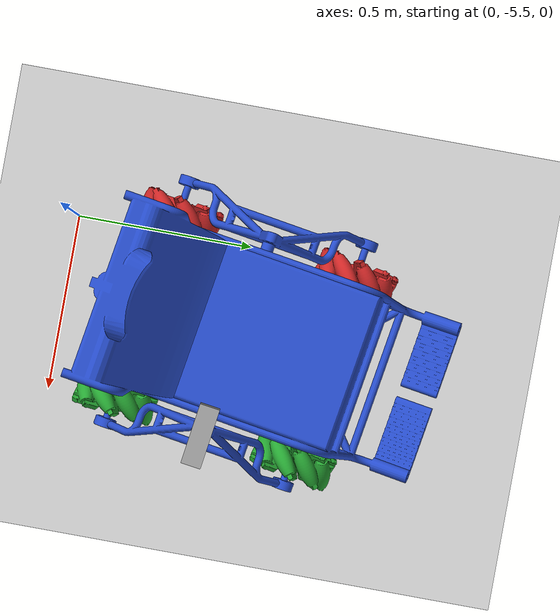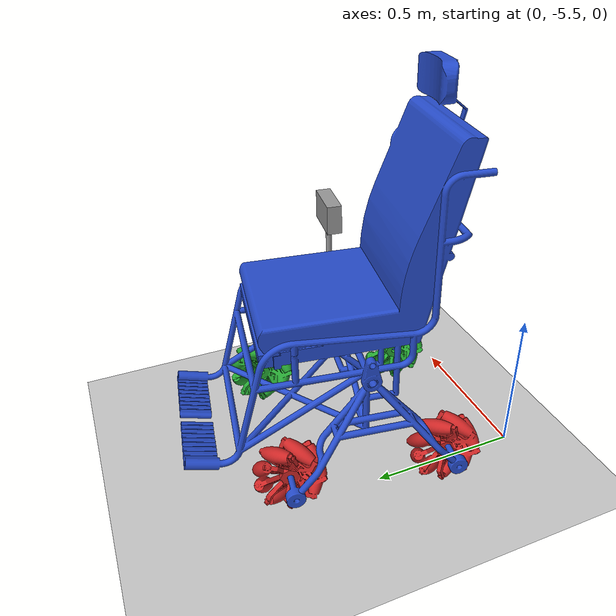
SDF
<sdf version="1.7">
 <world name="default">
  <light name="sun" type="directional">
   <pose>0 0 10 0 -0 0</pose>
   <diffuse>0.8 0.8 0.8 1</diffuse>
   <specular>0.2 0.2 0.2 1</specular>
   <attenuation>
    <range>1000</range>
    <constant>0.9</constant>
    <linear>0.01</linear>
    <quadratic>0.001</quadratic>
   </attenuation>
   <direction>-0.5 0.1 -0.9</direction>
   <spot><inner_angle>0</inner_angle><outer_angle>0</outer_angle><falloff>0</falloff></spot>
  </light>
  <model name="ground_plane">
   <static>1</static>
   <link name="link">
    <collision name="collision">
     <geometry><plane><normal>0 0 1</normal><size>100 100</size></plane></geometry>
     <surface><friction><ode><mu>100</mu><mu2>50</mu2></ode></friction></surface>
    </collision>
    <visual name="visual">
     <cast_shadows>0</cast_shadows>
     <geometry><plane><normal>0 0 1</normal><size>100 100</size></plane></geometry>
     <material>
      <script><uri>file://media/materials/scripts/gazebo.material</uri><name>Gazebo/Grey</name></script>
     </material>
    </visual>
   </link>
  </model>
  <gravity>0 0 -9.8</gravity>
  <magnetic_field>6e-06 2.3e-05 -4.2e-05</magnetic_field>
  <atmosphere type="adiabatic"/>
  <physics type="ode">
   <max_step_size>0.001</max_step_size>
   <real_time_factor>1</real_time_factor>
   <real_time_update_rate>1000</real_time_update_rate>
  </physics>
  <scene><ambient>0.4 0.4 0.4 1</ambient><background>0.7 0.7 0.7 1</background><shadows>1</shadows></scene>
  <audio><device>default</device></audio>
  <spherical_coordinates>
   <surface_model>EARTH_WGS84</surface_model>
   <latitude_deg>0</latitude_deg>
   <longitude_deg>0</longitude_deg>
   <elevation>0</elevation>
   <heading_deg>0</heading_deg>
  </spherical_coordinates>
  <model name="Wheelchair_camera">
   <link name="chassis">
    <inertial>
     <mass>7</mass>
     <inertia>
      <ixx>0.166667</ixx>
      <ixy>0</ixy>
      <ixz>0</ixz>
      <iyy>0.166667</iyy>
      <iyz>0</iyz>
      <izz>0.166667</izz>
     </inertia>
    </inertial>
    <pose>0.748698 0.289374 -0.132229 0.026851 0.20599 -1.30367</pose>
    <visual name="visual">
     <pose>-0.5 -0.4 -0.38 0 -0 0</pose>
     <geometry>
      <mesh>
       <uri>/home/carlos/Development/ROS2-Self-Driving-Car-AI-using-OpenCV-main/self_driving_car_pkg/models/Wheelchair_camera/meshes/structure_vrep.stl</uri>
       <scale>0.01 0.01 0.01</scale>
      </mesh>
     </geometry>
     <material>
      <lighting>1</lighting>
      <script><uri>file://media/materials/scripts/gazebo.material</uri><name>Gazebo/Blue</name></script>
      <shader type="pixel"><normal_map>__default__</normal_map></shader>
      <ambient>0.3 0.3 0.3 1</ambient>
      <diffuse>0.7 0.7 0.7 1</diffuse>
      <specular>0.01 0.01 0.01 1</specular>
      <emissive>0 0 0 1</emissive>
     </material>
    </visual>
    <collision name="collision">
     <pose>-0.5 -0.4 -0.38 0 -0 0</pose>
     <geometry>
      <mesh>
       <uri>/home/carlos/Development/ROS2-Self-Driving-Car-AI-using-OpenCV-main/self_driving_car_pkg/models/Wheelchair_camera/meshes/structure_vrep.stl</uri>
       <scale>0.01 0.01 0.01</scale>
      </mesh>
     </geometry>
     <surface>
      <friction>
       <ode><mu>1</mu><mu2>1</mu2><fdir1>0 0 0</fdir1><slip1>0</slip1><slip2>0</slip2></ode>
       <torsional>
        <coefficient>1</coefficient>
        <patch_radius>0</patch_radius>
        <surface_radius>0</surface_radius>
        <use_patch_radius>1</use_patch_radius>
        <ode><slip>0</slip></ode>
       </torsional>
      </friction>
      <bounce><restitution_coefficient>0</restitution_coefficient><threshold>1e+06</threshold></bounce>
      <contact>
       <collide_without_contact>0</collide_without_contact>
       <collide_without_contact_bitmask>1</collide_without_contact_bitmask>
       <collide_bitmask>1</collide_bitmask>
       <ode>
        <soft_cfm>0</soft_cfm>
        <soft_erp>0.2</soft_erp>
        <kp>1e+13</kp>
        <kd>1</kd>
        <max_vel>0.01</max_vel>
        <min_depth>0</min_depth>
       </ode>
       <bullet>
        <split_impulse>1</split_impulse>
        <split_impulse_penetration_threshold>-0.01</split_impulse_penetration_threshold>
        <soft_cfm>0</soft_cfm>
        <soft_erp>0.2</soft_erp>
        <kp>1e+13</kp>
        <kd>1</kd>
       </bullet>
      </contact>
     </surface>
    </collision>
   </link>
   <link name="front_left_wheel">
    <inertial>
     <mass>2</mass>
     <inertia>
      <ixx>0.166667</ixx>
      <ixy>0</ixy>
      <ixz>0</ixz>
      <iyy>0.166667</iyy>
      <iyz>0</iyz>
      <izz>0.166667</izz>
     </inertia>
    </inertial>
    <pose>0.485744 -0.072212 0.044314 1.29211 1.42688 1.55052</pose>
    <visual name="visual">
     <pose>-6.9 0.3 -2.18 0 -0 0</pose>
     <geometry>
      <mesh>
       <uri>/home/carlos/Development/ROS2-Self-Driving-Car-AI-using-OpenCV-main/self_driving_car_pkg/models/Wheelchair_camera/meshes/Omni/omniwheel.dae</uri>
       <scale>1 1 1</scale>
      </mesh>
     </geometry>
     <material>
      <lighting>1</lighting>
      <script><uri>file://media/materials/scripts/gazebo.material</uri><name>Gazebo/Green</name></script>
      <shader type="pixel"><normal_map>__default__</normal_map></shader>
      <ambient>0.3 0.3 0.3 1</ambient>
      <diffuse>0.7 0.7 0.7 1</diffuse>
      <specular>0.01 0.01 0.01 1</specular>
      <emissive>0 0 0 1</emissive>
     </material>
    </visual>
    <collision name="collision">
     <pose>-6.9 0.3 -2.18 0 -0 0</pose>
     <geometry>
      <mesh>
       <uri>/home/carlos/Development/ROS2-Self-Driving-Car-AI-using-OpenCV-main/self_driving_car_pkg/models/Wheelchair_camera/meshes/Omni/omniwheel.dae</uri>
       <scale>1 1 1</scale>
      </mesh>
     </geometry>
     <surface>
      <friction>
       <ode><mu>1</mu><mu2>1</mu2><fdir1>0 0 0</fdir1><slip1>0</slip1><slip2>0</slip2></ode>
       <torsional>
        <coefficient>1</coefficient>
        <patch_radius>0</patch_radius>
        <surface_radius>0</surface_radius>
        <use_patch_radius>1</use_patch_radius>
        <ode><slip>0</slip></ode>
       </torsional>
      </friction>
      <bounce><restitution_coefficient>0</restitution_coefficient><threshold>1e+06</threshold></bounce>
      <contact>
       <collide_without_contact>0</collide_without_contact>
       <collide_without_contact_bitmask>1</collide_without_contact_bitmask>
       <collide_bitmask>1</collide_bitmask>
       <ode>
        <soft_cfm>0</soft_cfm>
        <soft_erp>0.2</soft_erp>
        <kp>1e+13</kp>
        <kd>1</kd>
        <max_vel>0.01</max_vel>
        <min_depth>0</min_depth>
       </ode>
       <bullet>
        <split_impulse>1</split_impulse>
        <split_impulse_penetration_threshold>-0.01</split_impulse_penetration_threshold>
        <soft_cfm>0</soft_cfm>
        <soft_erp>0.2</soft_erp>
        <kp>1e+13</kp>
        <kd>1</kd>
       </bullet>
      </contact>
     </surface>
    </collision>
   </link>
   <link name="front_right_wheel">
    <inertial>
     <mass>2</mass>
     <inertia>
      <ixx>0.166667</ixx>
      <ixy>0</ixy>
      <ixz>0</ixz>
      <iyy>0.166667</iyy>
      <iyz>0</iyz>
      <izz>0.166667</izz>
     </inertia>
    </inertial>
    <pose>0.46799 0.04267 -0.478341 1.4265 1.42983 1.68206</pose>
    <visual name="visual">
     <pose>-6.9 0.3 -2.18 0 -0 0</pose>
     <geometry>
      <mesh>
       <uri>/home/carlos/Development/ROS2-Self-Driving-Car-AI-using-OpenCV-main/self_driving_car_pkg/models/Wheelchair_camera/meshes/Omni/omniwheel.dae</uri>
       <scale>1 1 1</scale>
      </mesh>
     </geometry>
     <material>
      <lighting>1</lighting>
      <script><uri>file://media/materials/scripts/gazebo.material</uri><name>Gazebo/Red</name></script>
      <shader type="pixel"><normal_map>__default__</normal_map></shader>
      <ambient>0.3 0.3 0.3 1</ambient>
      <diffuse>0.7 0.7 0.7 1</diffuse>
      <specular>0.01 0.01 0.01 1</specular>
      <emissive>0 0 0 1</emissive>
     </material>
    </visual>
    <collision name="collision">
     <pose>-6.9 0.3 -2.18 0 -0 0</pose>
     <geometry>
      <mesh>
       <uri>/home/carlos/Development/ROS2-Self-Driving-Car-AI-using-OpenCV-main/self_driving_car_pkg/models/Wheelchair_camera/meshes/Omni/omniwheel.dae</uri>
       <scale>1 1 1</scale>
      </mesh>
     </geometry>
     <surface>
      <friction>
       <ode><mu>1</mu><mu2>1</mu2><fdir1>0 0 0</fdir1><slip1>0</slip1><slip2>0</slip2></ode>
       <torsional>
        <coefficient>1</coefficient>
        <patch_radius>0</patch_radius>
        <surface_radius>0</surface_radius>
        <use_patch_radius>1</use_patch_radius>
        <ode><slip>0</slip></ode>
       </torsional>
      </friction>
      <bounce><restitution_coefficient>0</restitution_coefficient><threshold>1e+06</threshold></bounce>
      <contact>
       <collide_without_contact>0</collide_without_contact>
       <collide_without_contact_bitmask>1</collide_without_contact_bitmask>
       <collide_bitmask>1</collide_bitmask>
       <ode>
        <soft_cfm>0</soft_cfm>
        <soft_erp>0.2</soft_erp>
        <kp>1e+13</kp>
        <kd>1</kd>
        <max_vel>0.01</max_vel>
        <min_depth>0</min_depth>
       </ode>
       <bullet>
        <split_impulse>1</split_impulse>
        <split_impulse_penetration_threshold>-0.01</split_impulse_penetration_threshold>
        <soft_cfm>0</soft_cfm>
        <soft_erp>0.2</soft_erp>
        <kp>1e+13</kp>
        <kd>1</kd>
       </bullet>
      </contact>
     </surface>
    </collision>
   </link>
   <link name="link_0">
    <inertial>
     <mass>0.5</mass>
     <inertia>
      <ixx>0.0145833</ixx>
      <ixy>0</ixy>
      <ixz>0</ixz>
      <iyy>0.0145833</iyy>
      <iyz>0</iyz>
      <izz>0.0125</izz>
     </inertia>
    </inertial>
    <pose>0.479292 0.317164 -0.117999 2.84467 1.53744 3.14159</pose>
   </link>
   <link name="link_0_clone">
    <inertial>
     <mass>0.1</mass>
     <inertia>
      <ixx>0.0145833</ixx>
      <ixy>0</ixy>
      <ixz>0</ixz>
      <iyy>0.0145833</iyy>
      <iyz>0</iyz>
      <izz>0.0125</izz>
     </inertia>
    </inertial>
    <pose>0.860846 0.357169 -0.406325 2.77313 -0.020871 -2.87118</pose>
   </link>
   <link name="rear_left_wheel">
    <inertial>
     <mass>2</mass>
     <inertia>
      <ixx>0.166667</ixx>
      <ixy>0</ixy>
      <ixz>0</ixz>
      <iyy>0.166667</iyy>
      <iyz>0</iyz>
      <izz>0.166667</izz>
     </inertia>
    </inertial>
    <pose>0.349452 0.427898 0.151281 1.47006 1.34823 1.7287</pose>
    <visual name="visual">
     <pose>-6.9 0.3 -2.18 0 -0 0</pose>
     <geometry>
      <mesh>
       <uri>/home/carlos/Development/ROS2-Self-Driving-Car-AI-using-OpenCV-main/self_driving_car_pkg/models/Wheelchair_camera/meshes/Omni/omniwheel.dae</uri>
       <scale>1 1 1</scale>
      </mesh>
     </geometry>
     <material>
      <lighting>1</lighting>
      <script><uri>file://media/materials/scripts/gazebo.material</uri><name>Gazebo/Green</name></script>
      <shader type="pixel"><normal_map>__default__</normal_map></shader>
      <ambient>0.3 0.3 0.3 1</ambient>
      <diffuse>0.7 0.7 0.7 1</diffuse>
      <specular>0.01 0.01 0.01 1</specular>
      <emissive>0 0 0 1</emissive>
     </material>
    </visual>
    <collision name="collision">
     <pose>-6.9 0.3 -2.18 0 -0 0</pose>
     <geometry>
      <mesh>
       <uri>/home/carlos/Development/ROS2-Self-Driving-Car-AI-using-OpenCV-main/self_driving_car_pkg/models/Wheelchair_camera/meshes/Omni/omniwheel.dae</uri>
       <scale>1 1 1</scale>
      </mesh>
     </geometry>
     <surface>
      <friction>
       <ode><mu>1</mu><mu2>1</mu2><fdir1>0 0 0</fdir1><slip1>0</slip1><slip2>0</slip2></ode>
       <torsional>
        <coefficient>1</coefficient>
        <patch_radius>0</patch_radius>
        <surface_radius>0</surface_radius>
        <use_patch_radius>1</use_patch_radius>
        <ode><slip>0</slip></ode>
       </torsional>
      </friction>
      <bounce><restitution_coefficient>0</restitution_coefficient><threshold>1e+06</threshold></bounce>
      <contact>
       <collide_without_contact>0</collide_without_contact>
       <collide_without_contact_bitmask>1</collide_without_contact_bitmask>
       <collide_bitmask>1</collide_bitmask>
       <ode>
        <soft_cfm>0</soft_cfm>
        <soft_erp>0.2</soft_erp>
        <kp>1e+13</kp>
        <kd>1</kd>
        <max_vel>0.01</max_vel>
        <min_depth>0</min_depth>
       </ode>
       <bullet>
        <split_impulse>1</split_impulse>
        <split_impulse_penetration_threshold>-0.01</split_impulse_penetration_threshold>
        <soft_cfm>0</soft_cfm>
        <soft_erp>0.2</soft_erp>
        <kp>1e+13</kp>
        <kd>1</kd>
       </bullet>
      </contact>
     </surface>
    </collision>
   </link>
   <link name="rear_right_wheel">
    <inertial>
     <mass>2</mass>
     <inertia>
      <ixx>0.166667</ixx>
      <ixy>0</ixy>
      <ixz>0</ixz>
      <iyy>0.166667</iyy>
      <iyz>0</iyz>
      <izz>0.166667</izz>
     </inertia>
    </inertial>
    <pose>0.32579 0.532347 -0.373882 1.34476 1.38815 1.68274</pose>
    <visual name="visual">
     <pose>-6.9 0.3 -2.18 0 -0 0</pose>
     <geometry>
      <mesh>
       <uri>/home/carlos/Development/ROS2-Self-Driving-Car-AI-using-OpenCV-main/self_driving_car_pkg/models/Wheelchair_camera/meshes/Omni/omniwheel.dae</uri>
       <scale>1 1 1</scale>
      </mesh>
     </geometry>
     <material>
      <lighting>1</lighting>
      <script><uri>file://media/materials/scripts/gazebo.material</uri><name>Gazebo/Red</name></script>
      <shader type="pixel"><normal_map>__default__</normal_map></shader>
      <ambient>0.3 0.3 0.3 1</ambient>
      <diffuse>0.7 0.7 0.7 1</diffuse>
      <specular>0.01 0.01 0.01 1</specular>
      <emissive>0 0 0 1</emissive>
     </material>
    </visual>
    <collision name="collision">
     <pose>-6.9 0.3 -2.18 0 -0 0</pose>
     <geometry>
      <mesh>
       <uri>/home/carlos/Development/ROS2-Self-Driving-Car-AI-using-OpenCV-main/self_driving_car_pkg/models/Wheelchair_camera/meshes/Omni/omniwheel.dae</uri>
       <scale>1 1 1</scale>
      </mesh>
     </geometry>
     <surface>
      <friction>
       <ode><mu>1</mu><mu2>1</mu2><fdir1>0 0 0</fdir1><slip1>0</slip1><slip2>0</slip2></ode>
       <torsional>
        <coefficient>1</coefficient>
        <patch_radius>0</patch_radius>
        <surface_radius>0</surface_radius>
        <use_patch_radius>1</use_patch_radius>
        <ode><slip>0</slip></ode>
       </torsional>
      </friction>
      <bounce><restitution_coefficient>0</restitution_coefficient><threshold>1e+06</threshold></bounce>
      <contact>
       <collide_without_contact>0</collide_without_contact>
       <collide_without_contact_bitmask>1</collide_without_contact_bitmask>
       <collide_bitmask>1</collide_bitmask>
       <ode>
        <soft_cfm>0</soft_cfm>
        <soft_erp>0.2</soft_erp>
        <kp>1e+13</kp>
        <kd>1</kd>
        <max_vel>0.01</max_vel>
        <min_depth>0</min_depth>
       </ode>
       <bullet>
        <split_impulse>1</split_impulse>
        <split_impulse_penetration_threshold>-0.01</split_impulse_penetration_threshold>
        <soft_cfm>0</soft_cfm>
        <soft_erp>0.2</soft_erp>
        <kp>1e+13</kp>
        <kd>1</kd>
       </bullet>
      </contact>
     </surface>
    </collision>
   </link>
   <model name="Camera">
    <link name="link_0">
     <inertial>
      <mass>0.1</mass>
      <inertia><ixx>0.145833</ixx><ixy>0</ixy><ixz>0</ixz><iyy>0.145833</iyy><iyz>0</iyz><izz>0.125</izz></inertia>
     </inertial>
     <pose>0.001833 -0.005091 -0.07072 0 -0 0</pose>
     <visual name="visual">
      <geometry><cylinder><radius>0.01</radius><length>0.2</length></cylinder></geometry>
      <material>
       <lighting>1</lighting>
       <script><uri>file://media/materials/scripts/gazebo.material</uri><name>Gazebo/Grey</name></script>
       <shader type="pixel"><normal_map>__default__</normal_map></shader>
       <ambient>0.3 0.3 0.3 1</ambient>
       <diffuse>0.7 0.7 0.7 1</diffuse>
       <specular>0.01 0.01 0.01 1</specular>
       <emissive>0 0 0 1</emissive>
      </material>
     </visual>
     <collision name="collision">
      <geometry><cylinder><radius>0.01</radius><length>0.2</length></cylinder></geometry>
      <surface>
       <friction>
        <ode><mu>1</mu><mu2>1</mu2><fdir1>0 0 0</fdir1><slip1>0</slip1><slip2>0</slip2></ode>
        <torsional>
         <coefficient>1</coefficient>
         <patch_radius>0</patch_radius>
         <surface_radius>0</surface_radius>
         <use_patch_radius>1</use_patch_radius>
         <ode><slip>0</slip></ode>
        </torsional>
       </friction>
       <bounce><restitution_coefficient>0</restitution_coefficient><threshold>1e+06</threshold></bounce>
       <contact>
        <collide_without_contact>0</collide_without_contact>
        <collide_without_contact_bitmask>1</collide_without_contact_bitmask>
        <collide_bitmask>1</collide_bitmask>
        <ode>
         <soft_cfm>0</soft_cfm>
         <soft_erp>0.2</soft_erp>
         <kp>1e+13</kp>
         <kd>1</kd>
         <max_vel>0.01</max_vel>
         <min_depth>0</min_depth>
        </ode>
        <bullet>
         <split_impulse>1</split_impulse>
         <split_impulse_penetration_threshold>-0.01</split_impulse_penetration_threshold>
         <soft_cfm>0</soft_cfm>
         <soft_erp>0.2</soft_erp>
         <kp>1e+13</kp>
         <kd>1</kd>
        </bullet>
       </contact>
      </surface>
     </collision>
    </link>
    <link name="link_1">
     <inertial>
      <mass>1</mass>
      <inertia>
       <ixx>0.166667</ixx>
       <ixy>0</ixy>
       <ixz>0</ixz>
       <iyy>0.166667</iyy>
       <iyz>0</iyz>
       <izz>0.166667</izz>
      </inertia>
     </inertial>
     <sensor name="camera" type="camera">
      <always_on>1</always_on>
      <visualize>1</visualize>
      <update_rate>30</update_rate>
      <camera name="prius_cam">
       <horizontal_fov>1.0856</horizontal_fov>
       <image><width>1280</width><height>720</height><format>R8G8B8</format></image>
       <clip><near>0.03</near><far>100</far></clip>
       <noise><type>gaussian</type><mean>0</mean><stddev>0.007</stddev></noise>
      </camera>
      <plugin name="camera_driver" filename="libgazebo_ros_camera.so"/>
     </sensor>
     <pose>0.000585 -0.003944 0.07072 0 -0 0.261129</pose>
     <visual name="visual">
      <geometry><box><size>0.05 0.15 0.1</size></box></geometry>
      <material>
       <lighting>1</lighting>
       <script><uri>file://media/materials/scripts/gazebo.material</uri><name>Gazebo/Grey</name></script>
       <shader type="pixel"><normal_map>__default__</normal_map></shader>
       <ambient>0.3 0.3 0.3 1</ambient>
       <diffuse>0.7 0.7 0.7 1</diffuse>
       <specular>0.01 0.01 0.01 1</specular>
       <emissive>0 0 0 1</emissive>
      </material>
     </visual>
     <collision name="collision">
      <geometry><box><size>0.05 0.15 0.1</size></box></geometry>
      <surface>
       <friction>
        <ode><mu>1</mu><mu2>1</mu2><fdir1>0 0 0</fdir1><slip1>0</slip1><slip2>0</slip2></ode>
        <torsional>
         <coefficient>1</coefficient>
         <patch_radius>0</patch_radius>
         <surface_radius>0</surface_radius>
         <use_patch_radius>1</use_patch_radius>
         <ode><slip>0</slip></ode>
        </torsional>
       </friction>
       <bounce><restitution_coefficient>0</restitution_coefficient><threshold>1e+06</threshold></bounce>
       <contact>
        <collide_without_contact>0</collide_without_contact>
        <collide_without_contact_bitmask>1</collide_without_contact_bitmask>
        <collide_bitmask>1</collide_bitmask>
        <ode>
         <soft_cfm>0</soft_cfm>
         <soft_erp>0.2</soft_erp>
         <kp>1e+13</kp>
         <kd>1</kd>
         <max_vel>0.01</max_vel>
         <min_depth>0</min_depth>
        </ode>
        <bullet>
         <split_impulse>1</split_impulse>
         <split_impulse_penetration_threshold>-0.01</split_impulse_penetration_threshold>
         <soft_cfm>0</soft_cfm>
         <soft_erp>0.2</soft_erp>
         <kp>1e+13</kp>
         <kd>1</kd>
        </bullet>
       </contact>
      </surface>
     </collision>
    </link>
    <joint name="link_camera_original" type="fixed">
     <parent>link_0</parent>
     <child>link_1</child>
     <physics>
      <ode><limit><cfm>0</cfm><erp>0.2</erp></limit><suspension><cfm>0</cfm><erp>0.2</erp></suspension></ode>
     </physics>
    </joint>
    <static>0</static>
    <pose>0.95639 0.326065 0.124836 -1.54657 -0.037634 -1.308</pose>
   </model>
   <joint name="camera_JOINT" type="fixed">
    <parent>chassis</parent>
    <child>Camera::link_0</child>
    <physics>
     <ode><limit><cfm>0</cfm><erp>0.2</erp></limit><suspension><cfm>0</cfm><erp>0.2</erp></suspension></ode>
    </physics>
   </joint>
   <joint name="chassis_JOINT_0" type="fixed">
    <parent>chassis</parent>
    <child>link_0_clone</child>
    <physics>
     <ode><limit><cfm>0</cfm><erp>0.2</erp></limit><suspension><cfm>0</cfm><erp>0.2</erp></suspension></ode>
    </physics>
   </joint>
   <joint name="front_left_JOINT" type="revolute">
    <parent>chassis</parent>
    <child>front_left_wheel</child>
    <pose>-0.03 -0 0 0 -0 0</pose>
    <axis>
     <xyz>1 0 0</xyz>
     <limit>
      <lower>-1.79769e+308</lower>
      <upper>1.79769e+308</upper>
      <effort>-1</effort>
      <velocity>-1</velocity>
     </limit>
     <dynamics>
      <spring_reference>0</spring_reference>
      <spring_stiffness>0</spring_stiffness>
      <damping>0</damping>
      <friction>0</friction>
     </dynamics>
    </axis>
    <physics>
     <ode><limit><cfm>0</cfm><erp>0.2</erp></limit><suspension><cfm>0</cfm><erp>0.2</erp></suspension></ode>
    </physics>
   </joint>
   <joint name="front_right_JOINT" type="revolute">
    <parent>chassis</parent>
    <child>front_right_wheel</child>
    <pose>-0.03 0 0 0 -0 0</pose>
    <axis>
     <xyz>1 0 0</xyz>
     <limit>
      <lower>-1.79769e+308</lower>
      <upper>1.79769e+308</upper>
      <effort>-1</effort>
      <velocity>-1</velocity>
     </limit>
     <dynamics>
      <spring_reference>0</spring_reference>
      <spring_stiffness>0</spring_stiffness>
      <damping>0</damping>
      <friction>0</friction>
     </dynamics>
    </axis>
    <physics>
     <ode><limit><cfm>0</cfm><erp>0.2</erp></limit><suspension><cfm>0</cfm><erp>0.2</erp></suspension></ode>
    </physics>
   </joint>
   <joint name="rear_left_JOINT" type="revolute">
    <parent>chassis</parent>
    <child>rear_left_wheel</child>
    <pose>-0.03 0 0 0 -0 0</pose>
    <axis>
     <xyz>1 0 0</xyz>
     <limit>
      <lower>-1.79769e+308</lower>
      <upper>1.79769e+308</upper>
      <effort>-1</effort>
      <velocity>-1</velocity>
     </limit>
     <dynamics>
      <spring_reference>0</spring_reference>
      <spring_stiffness>0</spring_stiffness>
      <damping>0</damping>
      <friction>0</friction>
     </dynamics>
    </axis>
    <physics>
     <ode><limit><cfm>0</cfm><erp>0.2</erp></limit><suspension><cfm>0</cfm><erp>0.2</erp></suspension></ode>
    </physics>
   </joint>
   <joint name="rear_right_JOINT" type="revolute">
    <parent>chassis</parent>
    <child>rear_right_wheel</child>
    <pose>-0.03 0 0 0 -0 0</pose>
    <axis>
     <xyz>1 0 0</xyz>
     <limit>
      <lower>-1.79769e+308</lower>
      <upper>1.79769e+308</upper>
      <effort>-1</effort>
      <velocity>-1</velocity>
     </limit>
     <dynamics>
      <spring_reference>0</spring_reference>
      <spring_stiffness>0</spring_stiffness>
      <damping>0</damping>
      <friction>0</friction>
     </dynamics>
    </axis>
    <physics>
     <ode><limit><cfm>0</cfm><erp>0.2</erp></limit><suspension><cfm>0</cfm><erp>0.2</erp></suspension></ode>
    </physics>
   </joint>
   <joint name="weight_JOINT" type="fixed">
    <parent>chassis</parent>
    <child>link_0</child>
    <physics>
     <ode><limit><cfm>0</cfm><erp>0.2</erp></limit><suspension><cfm>0</cfm><erp>0.2</erp></suspension></ode>
    </physics>
   </joint>
   <static>0</static>
   <plugin name="drive_controller" filename="libgazebo_ros_diff_drive.so">
    <num_wheel_pairs>2</num_wheel_pairs>
    <updateRate>100.0</updateRate>
    <robotNamespace>/</robotNamespace>
    <left_joint>rear_left_JOINT</left_joint>
    <left_joint>front_left_JOINT</left_joint>
    <right_joint>rear_right_JOINT</right_joint>
    <right_joint>front_right_JOINT</right_joint>
    <wheel_separation>0.625</wheel_separation>
    <wheel_diameter>0.185</wheel_diameter>
    <robotBaseFrame>Wheelchair_camera</robotBaseFrame>
    <torque>10</torque>
    <topicName>cmd_vel</topicName>
    <broadcastTF>0</broadcastTF>
   </plugin>
   <pose>0.437974 -4.9491 -0.323055 1.46484 -1.29049 1.30736</pose>
  </model>
 </world>
</sdf>
